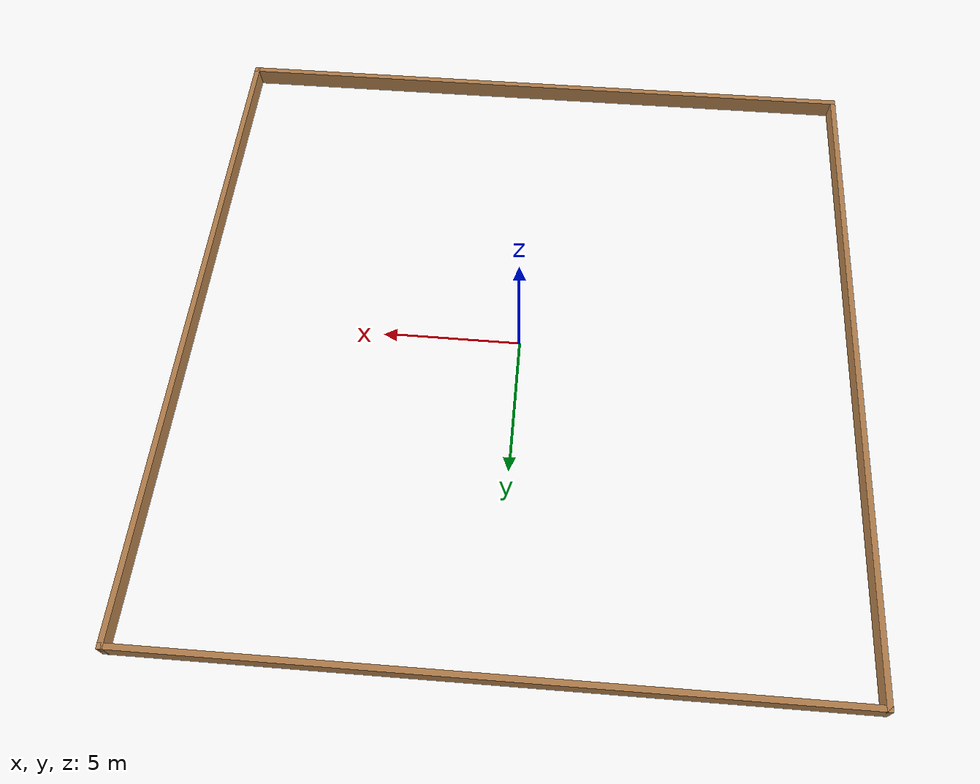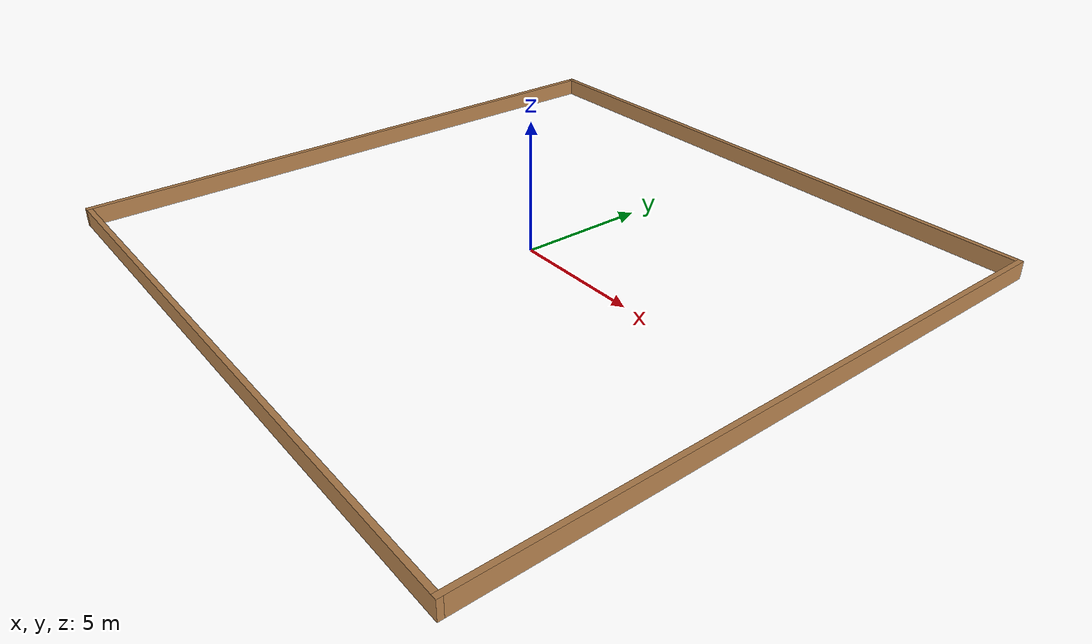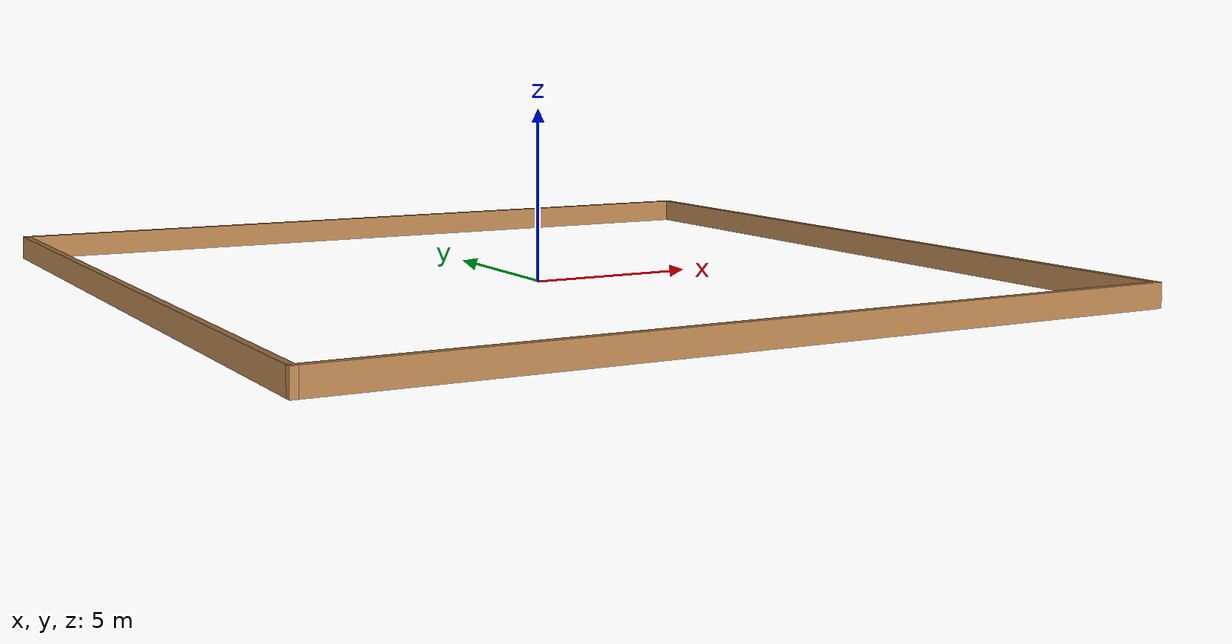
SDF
<?xml version='1.0'?>
<sdf version='1.7'>
  <model name='square3'>
    <pose>0 0 0 0 -0 0</pose>
    <link name='Wall_0'>
      <collision name='Wall_0_Collision'>
        <geometry>
          <box>
            <size>24.2 0.2 0.7</size>
          </box>
        </geometry>
        <pose>0 0 0.35 0 -0 0</pose>
      </collision>
      <visual name='Wall_0_Visual'>
        <pose>0 0 0.35 0 -0 0</pose>
        <geometry>
          <box>
            <size>24.2 0.2 0.7</size>
          </box>
        </geometry>
        <material>
          <script>
            <uri>file://media/materials/scripts/gazebo.material</uri>
            <name>Gazebo/Wood</name>
          </script>
          <ambient>1 1 1 1</ambient>
        </material>
        <meta>
          <layer>0</layer>
        </meta>
      </visual>
      <pose>0 12 0 0 -0 0</pose>
    </link>
    <link name='Wall_1'>
      <collision name='Wall_1_Collision'>
        <geometry>
          <box>
            <size>24.2 0.2 0.7</size>
          </box>
        </geometry>
        <pose>0 0 0.35 0 -0 0</pose>
      </collision>
      <visual name='Wall_1_Visual'>
        <pose>0 0 0.35 0 -0 0</pose>
        <geometry>
          <box>
            <size>24.2 0.2 0.7</size>
          </box>
        </geometry>
        <material>
          <script>
            <uri>file://media/materials/scripts/gazebo.material</uri>
            <name>Gazebo/Wood</name>
          </script>
          <ambient>1 1 1 1</ambient>
        </material>
        <meta>
          <layer>0</layer>
        </meta>
      </visual>
      <pose>12 0 0 0 -0 -1.5708</pose>
    </link>
    <link name='Wall_2'>
      <collision name='Wall_2_Collision'>
        <geometry>
          <box>
            <size>24.2 0.2 0.7</size>
          </box>
        </geometry>
        <pose>0 0 0.35 0 -0 0</pose>
      </collision>
      <visual name='Wall_2_Visual'>
        <pose>0 0 0.35 0 -0 0</pose>
        <geometry>
          <box>
            <size>24.2 0.2 0.7</size>
          </box>
        </geometry>
        <material>
          <script>
            <uri>file://media/materials/scripts/gazebo.material</uri>
            <name>Gazebo/Wood</name>
          </script>
          <ambient>1 1 1 1</ambient>
        </material>
        <meta>
          <layer>0</layer>
        </meta>
      </visual>
      <pose>0 -12 0 0 -0 3.14159</pose>
    </link>
    <link name='Wall_3'>
      <collision name='Wall_3_Collision'>
        <geometry>
          <box>
            <size>24.2 0.2 0.7</size>
          </box>
        </geometry>
        <pose>0 0 0.35 0 -0 0</pose>
      </collision>
      <visual name='Wall_3_Visual'>
        <pose>0 0 0.35 0 -0 0</pose>
        <geometry>
          <box>
            <size>24.2 0.2 0.7</size>
          </box>
        </geometry>
        <material>
          <script>
            <uri>file://media/materials/scripts/gazebo.material</uri>
            <name>Gazebo/Wood</name>
          </script>
          <ambient>1 1 1 1</ambient>
        </material>
        <meta>
          <layer>0</layer>
        </meta>
      </visual>
      <pose>-12 0 0 0 -0 1.5708</pose>
    </link>
    <static>1</static>
  </model>
</sdf>
